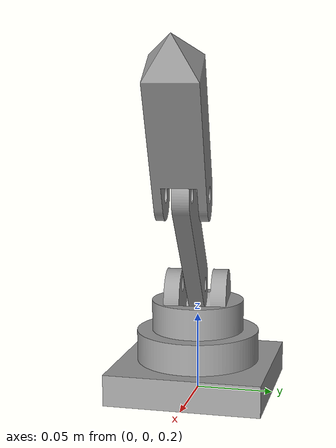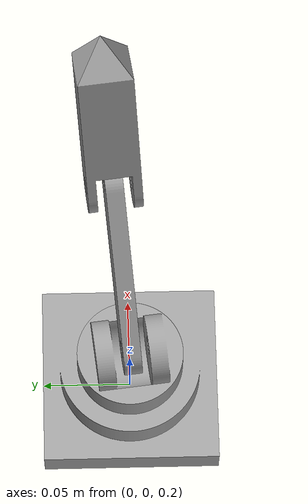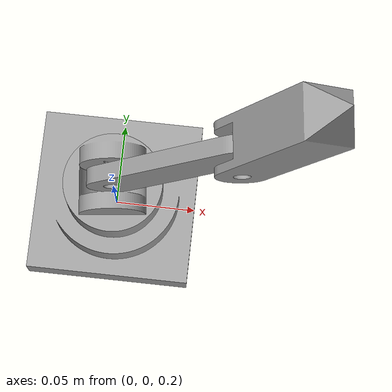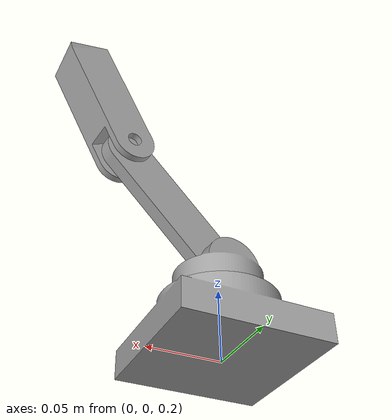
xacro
<?xml version="1.0"?>
<robot name="2dof_robot_arm_assembly" xmlns:xacro="http://www.ros.org/wiki/xacro">

<xacro:include filename="$(find 2dof_robot_arm_assembly_description)/urdf/materials.xacro" />
<xacro:include filename="$(find 2dof_robot_arm_assembly_description)/urdf/2dof_robot_arm_assembly.trans" />
<xacro:include filename="$(find 2dof_robot_arm_assembly_description)/urdf/2dof_robot_arm_assembly.gazebo" />
<link name="dummy"/>

<link name="base_link">
  <inertial>
    <origin xyz="-1.5131464107709274e-17 -7.565732053854637e-18 0.01669022341463877" rpy="0 0 0"/>
    <mass value="2.359168074581756"/>
    <inertia ixx="0.001913" iyy="0.001913" izz="0.003248" ixy="-0.0" iyz="-0.0" ixz="-0.0"/>
  </inertial>
  <visual>
    <origin xyz="0 0 0" rpy="0 0 0"/>
    <geometry>
      <mesh filename="package://2dof_robot_arm_assembly_description/meshes/base_link.stl" scale="0.001 0.001 0.001"/>
    </geometry>
    <material name="steel_satin"/>
  </visual>
  <collision>
    <origin xyz="0 0 0" rpy="0 0 0"/>
    <geometry>
      <mesh filename="package://2dof_robot_arm_assembly_description/meshes/base_link.stl" scale="0.001 0.001 0.001"/>
    </geometry>
  </collision>
</link>

<link name="link1_v3_1">
  <inertial>
    <origin xyz="2.9107983085076832e-15 3.270648008693948e-16 0.013727359835796218" rpy="0 0 0"/>
    <mass value="0.44267396683570365"/>
    <inertia ixx="0.000161" iyy="0.000142" izz="0.000219" ixy="2e-06" iyz="-0.0" ixz="-0.0"/>
  </inertial>
  <visual>
    <origin xyz="-0.0 -0.0 -0.04" rpy="0 0 0"/>
    <geometry>
      <mesh filename="package://2dof_robot_arm_assembly_description/meshes/link1_v3_1.stl" scale="0.001 0.001 0.001"/>
    </geometry>
    <material name="steel_satin"/>
  </visual>
  <collision>
    <origin xyz="-0.0 -0.0 -0.04" rpy="0 0 0"/>
    <geometry>
      <mesh filename="package://2dof_robot_arm_assembly_description/meshes/link1_v3_1.stl" scale="0.001 0.001 0.001"/>
    </geometry>
  </collision>
</link>

<link name="link2_v1_1">
  <inertial>
    <origin xyz="0.03538420026546515 0.01397606643689022 0.03395004014093726" rpy="0 0 0"/>
    <mass value="0.2786576290786893"/>
    <inertia ixx="0.000174" iyy="0.000361" izz="0.000196" ixy="-2.1e-05" iyz="-1.8e-05" ixz="-0.000159"/>
  </inertial>
  <visual>
    <origin xyz="-0.0011 0.009939 -0.07" rpy="0 0 0"/>
    <geometry>
      <mesh filename="package://2dof_robot_arm_assembly_description/meshes/link2_v1_1.stl" scale="0.001 0.001 0.001"/>
    </geometry>
    <material name="steel_satin"/>
  </visual>
  <collision>
    <origin xyz="-0.0011 0.009939 -0.07" rpy="0 0 0"/>
    <geometry>
      <mesh filename="package://2dof_robot_arm_assembly_description/meshes/link2_v1_1.stl" scale="0.001 0.001 0.001"/>
    </geometry>
  </collision>
</link>

<link name="end_effector_v2_1">
  <inertial>
    <origin xyz="0.04039450367126857 -0.0005610191776430004 -0.022568541174821127" rpy="0 0 0"/>
    <mass value="0.5633553038394754"/>
    <inertia ixx="0.000164" iyy="0.00039" izz="0.000322" ixy="-2.5e-05" iyz="1.5e-05" ixz="0.000132"/>
  </inertial>
  <visual>
    <origin xyz="-0.072418 -0.013044 -0.1379" rpy="0 0 0"/>
    <geometry>
      <mesh filename="package://2dof_robot_arm_assembly_description/meshes/end_effector_v2_1.stl" scale="0.001 0.001 0.001"/>
    </geometry>
    <material name="steel_satin"/>
  </visual>
  <collision>
    <origin xyz="-0.072418 -0.013044 -0.1379" rpy="0 0 0"/>
    <geometry>
      <mesh filename="package://2dof_robot_arm_assembly_description/meshes/end_effector_v2_1.stl" scale="0.001 0.001 0.001"/>
    </geometry>
  </collision>
</link>

<joint name="dummy_joint" type="fixed">
  <origin xyz="0.0 0.0 0.2" rpy="0 0 0"/>
  <parent link="dummy"/>
  <child link="base_link"/>
</joint>

<joint name="Rev1" type="continuous">
  <origin xyz="0.0 0.0 0.04" rpy="0 0 0"/>
  <parent link="base_link"/>
  <child link="link1_v3_1"/>
  <axis xyz="0.0 0.0 1.0"/>
</joint>

<joint name="Rev2" type="revolute">
  <origin xyz="0.0011 -0.009939 0.03" rpy="0 0 0"/>
  <parent link="link1_v3_1"/>
  <child link="link2_v1_1"/>
  <axis xyz="0.109981 -0.993934 -0.0"/>
  <limit upper="2.1" lower="-0.3" effort="100" velocity="100"/>
</joint>

<joint name="Rev3" type="revolute">
  <origin xyz="0.071318 0.022983 0.0679" rpy="0 0 0"/>
  <parent link="link2_v1_1"/>
  <child link="end_effector_v2_1"/>
  <axis xyz="-0.109981 0.993934 0.0"/>
  <limit upper="6.283185" lower="3.141593" effort="100" velocity="100"/>
</joint>

</robot>

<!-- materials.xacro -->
<robot name="2dof_robot_arm_assembly" xmlns:xacro="http://www.ros.org/wiki/xacro" >

<material name="silver_default">
  <color rgba="0.700 0.700 0.700 1.000"/>
</material>
<material name="steel_satin">
  <color rgba="0.6274509803921569 0.6274509803921569 0.6274509803921569 1.0"/>
</material>

</robot>

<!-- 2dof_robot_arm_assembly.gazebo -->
<robot name="2dof_robot_arm_assembly" xmlns:xacro="http://www.ros.org/wiki/xacro" >

<xacro:property name="body_color" value="Gazebo/Silver" />

<gazebo>
  <plugin name="gazebo_ros_control" filename="libgazebo_ros_control.so">
   <robotNamespace>/2dof_robot_arm_assembly</robotNamespace>
   <robotSimType>gazebo_ros_control/DefaultRobotHWSim</robotSimType>
   <legacyModeNS>true</legacyModeNS>
  </plugin>
</gazebo>
<gazebo reference="base_link">
  <material>${body_color}</material>
  <mu1>0.2</mu1>
  <mu2>0.2</mu2>
  <selfCollide>true</selfCollide>
  <gravity>true</gravity>
</gazebo>

<gazebo reference="link1_v3_1">
  <material>${body_color}</material>
  <mu1>0.2</mu1>
  <mu2>0.2</mu2>
  <selfCollide>true</selfCollide>
</gazebo>

<gazebo reference="link2_v1_1">
  <material>${body_color}</material>
  <mu1>0.2</mu1>
  <mu2>0.2</mu2>
  <selfCollide>true</selfCollide>
</gazebo>

<gazebo reference="end_effector_v2_1">
  <material>${body_color}</material>
  <mu1>0.2</mu1>
  <mu2>0.2</mu2>
  <selfCollide>true</selfCollide>
</gazebo>

</robot>
